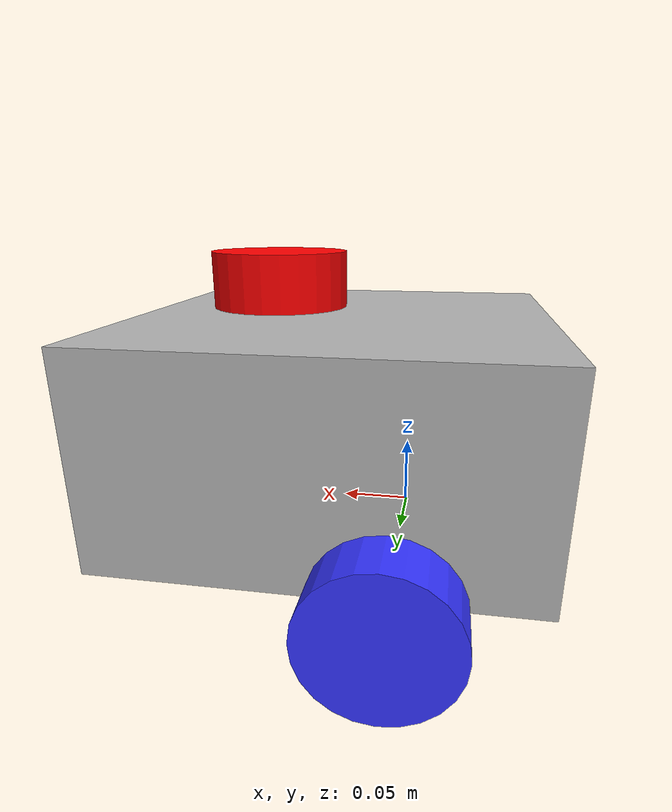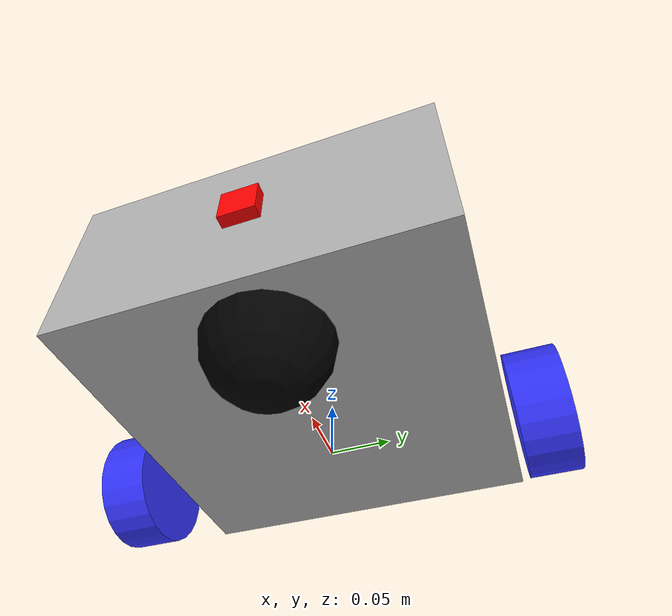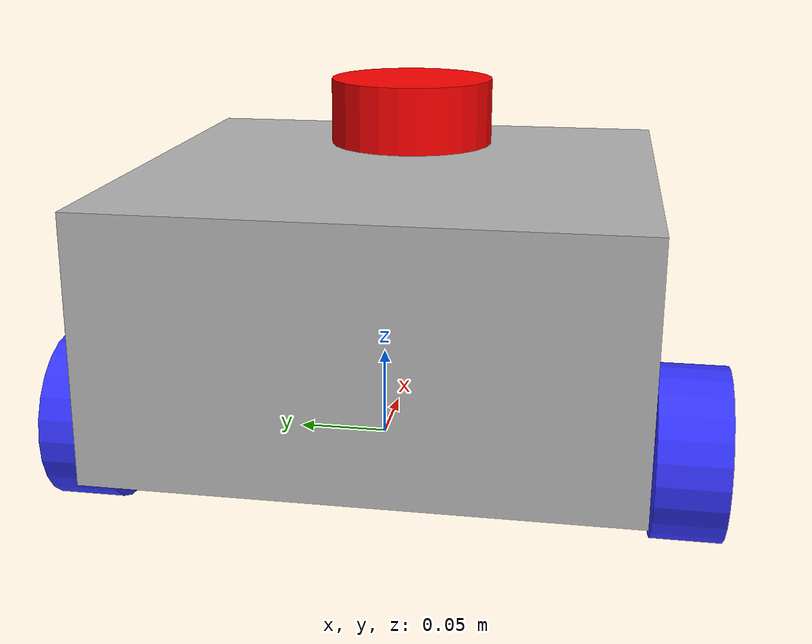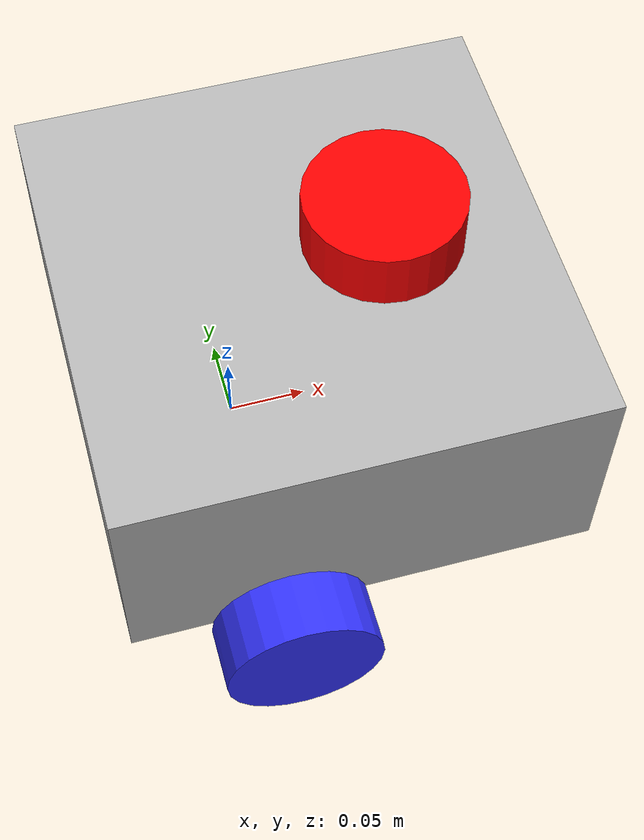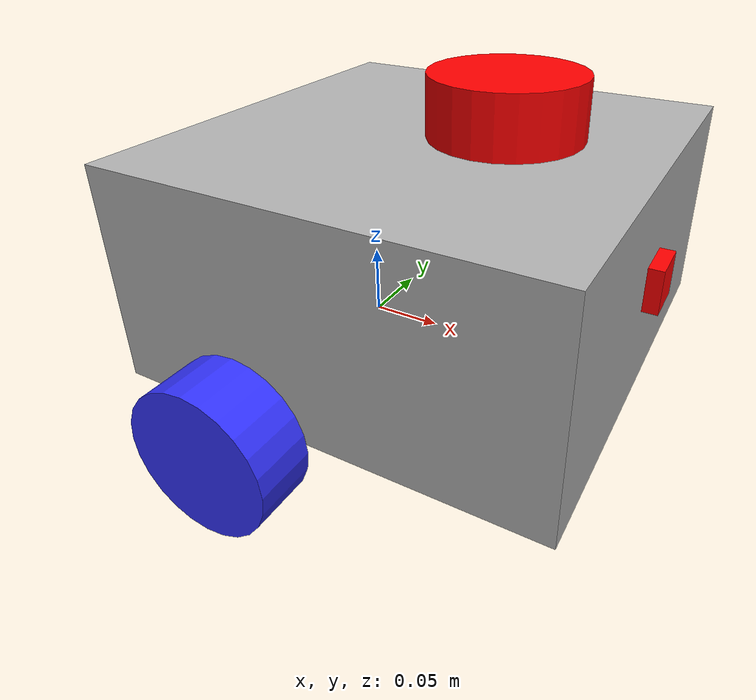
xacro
<?xml version="1.0"?>
<robot xmlns:xacro="http://www.ros.org/wiki/xacro"  name="robot">

   <xacro:arg name="use_sim" default="false"/>

   <xacro:include filename="robot_core.xacro" />

   <xacro:if value="$(arg use_sim)">
      <xacro:include filename="gazebo_control.xacro" />
   </xacro:if>

   <xacro:include filename="lidar.xacro" />
   <xacro:include filename="camera.xacro" />

</robot>

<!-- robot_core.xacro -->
<robot xmlns:xacro="http://www.ros.org/wiki/xacro">

    <xacro:include filename="inertial_macros.xacro" />

    <material name="white">
        <color rgba="1 1 1 1" />
    </material>

    <material name="orange">
        <color rgba="1 0.3 0.1 1" />
    </material>

    <material name="blue">
        <color rgba="0.2 0.2 1 1" />
    </material>

    <material name="black">
        <color rgba="0 0 0 1" />
    </material>

    <material name="red">
        <color rgba="1 0 0 1" />
    </material>

    <material name="gray">
        <color rgba="0.7 0.7 0.7 1" />
    </material>

    <!-- BASE LINK -->

    <link name="base_link">

    </link>

    <!-- CHASSIS LINK -->

    <joint name="chassis_joint" type="fixed">
        <parent link="base_link" />
        <child link="chassis" />
        <origin xyz="-0.1 0 0" />
    </joint>

    <link name="chassis">
        <visual>
            <origin xyz="0.15 0 0.075" />
            <geometry>
                <box size="0.3 0.3 0.15" />
            </geometry>
            <material name="gray" />
        </visual>
        <collision>
            <origin xyz="0.15 0 0.075" />
            <geometry>
                <box size="0.3 0.3 0.15" />
            </geometry>
        </collision>
        <xacro:inertial_box mass="0.5" x="0.3" y="0.3" z="0.15">
            <origin xyz="0.15 0 0.075" rpy="0 0 0" />
        </xacro:inertial_box>
    </link>

    <!-- LEFT WHEEL LINK -->

    <joint name="left_wheel_joint" type="continuous">
        <parent link="base_link" />
        <child link="left_wheel" />
        <origin xyz="0 0.175 0" rpy="-${pi/2} 0 0" />
        <axis xyz="0 0 1" />
    </joint>

    <link name="left_wheel">
        <visual>
            <geometry>
                <cylinder radius="0.05" length="0.04" />
            </geometry>
            <material name="blue" />
        </visual>
        <collision>
            <geometry>
                <cylinder radius="0.05" length="0.04" />
            </geometry>
        </collision>
        <xacro:inertial_cylinder mass="0.1" length="0.04" radius="0.05">
            <origin xyz="0 0 0" rpy="0 0 0" />
        </xacro:inertial_cylinder>
    </link>

    <!-- RIGHT WHEEL LINK -->

    <joint name="right_wheel_joint" type="continuous">
        <parent link="base_link" />
        <child link="right_wheel" />
        <origin xyz="0 -0.175 0" rpy="${pi/2} 0 0" />
        <axis xyz="0 0 -1" />
    </joint>

    <link name="right_wheel">
        <visual>
            <geometry>
                <cylinder radius="0.05" length="0.04" />
            </geometry>
            <material name="blue" />
        </visual>
        <collision>
            <geometry>
                <cylinder radius="0.05" length="0.04" />
            </geometry>
        </collision>
        <xacro:inertial_cylinder mass="0.1" length="0.04" radius="0.05">
            <origin xyz="0 0 0" rpy="0 0 0" />
        </xacro:inertial_cylinder>
    </link>

    <!-- CASTER WHEEL LINK -->

    <joint name="caster_wheel_joint" type="fixed">
        <parent link="chassis" />
        <child link="caster_wheel" />
        <origin xyz="0.24 0 0" />
    </joint>

    <link name="caster_wheel">
        <visual>
            <geometry>
                <sphere radius="0.05" />
            </geometry>
            <material name="black" />
        </visual>
        <collision>
            <geometry>
                <sphere radius="0.05" />
            </geometry>
        </collision>
        <xacro:inertial_sphere mass="0.1" radius="0.05">
            <origin xyz="0 0 0" rpy="0 0 0" />
        </xacro:inertial_sphere>
    </link>

    <gazebo reference="caster_wheel">
        <mu1>0.001</mu1>
        <mu2>0.001</mu2>
    </gazebo>

</robot>

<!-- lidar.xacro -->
<robot xmlns:xacro="http://www.ros.org/wiki/xacro" name="robot">

    <joint name="laser_joint" type="fixed">
        <parent link="base_link" />
        <child link="laser_frame" />
        <origin xyz="0.1 0.0 0.175" rpy="0 0 0" />
    </joint>
    <link name="laser_frame">
        <visual>
            <geometry>
                <cylinder radius="0.05" length="0.04" />
            </geometry>
            <material name="red" />
        </visual>
        <collision>
            <geometry>
                <cylinder radius="0.05" length="0.04" />
            </geometry>
        </collision>
        <xacro:inertial_cylinder
            mass="0.1" radius="0.05" length="0.04">
            <origin xyz="0 0 0" rpy="0 0 0" />
        </xacro:inertial_cylinder>
    </link>

    <xacro:if value="$(arg use_sim)">
        <gazebo reference="laser_frame">
            <sensor name="laser" type="gpu_lidar">
                <pose>0 0 0 0 0 0</pose>
                <update_rate>10</update_rate>
                <always_on>true</always_on>
                <visualize>false</visualize>

                <topic>/scan</topic>
                <gz_frame_id>laser_frame</gz_frame_id>

                <lidar>
                    <scan>
                        <horizontal>
                            <samples>500</samples>
                            <!-- A multiplier on samples, not an angular step. -->
                            <resolution>1</resolution>
                            <min_angle>-3.14</min_angle>
                            <max_angle>3.14</max_angle>
                        </horizontal>
                        <vertical>
                            <samples>1</samples>
                            <resolution>1</resolution>
                            <min_angle>0</min_angle>
                            <max_angle>0</max_angle>
                        </vertical>
                    </scan>
                    <range>
                        <min>0.05</min>
                        <max>12.0</max>
                        <resolution>0.01</resolution>
                    </range>
                </lidar>
            </sensor>
        </gazebo>
    </xacro:if>

</robot>

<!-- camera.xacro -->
<robot xmlns:xacro="http://www.ros.org/wiki/xacro" name="robot">

    <joint name="camera_joint" type="fixed">
        <parent link="chassis" />
        <child link="camera_link" />
        <origin xyz="0.305 0.0 0.08" rpy="0 0 0" />
    </joint>

    <link name="camera_link">
        <visual>
            <geometry>
                <box size="0.010 0.03 0.03" />
            </geometry>
            <material name="red" />
        </visual>
    </link>

    <joint name="camera_optical_joint" type="fixed">
        <parent link="camera_link" />
        <child link="camera_link_optical" />
        <origin xyz="0 0 0" rpy="${-pi/2} 0 ${-pi/2}" />
    </joint>

    <link name="camera_link_optical"></link>

    <xacro:if value="$(arg use_sim)">
        <gazebo reference="camera_link">
            <sensor name="camera" type="camera">
                <pose>0 0 0 0 0 0</pose>
                <update_rate>10</update_rate>
                <always_on>true</always_on>
                <visualize>true</visualize>

                <topic>/camera/image_raw</topic>
                <gz_frame_id>camera_link_optical</gz_frame_id>

                <!-- 640x480 matches the real C920's usb_cam config in
                     mybot_detection, so the detector could be pointed at the
                     simulation without re-tuning. -->
                <camera>
                    <horizontal_fov>1.089</horizontal_fov>
                    <image>
                        <width>640</width>
                        <height>480</height>
                        <format>R8G8B8</format>
                    </image>
                    <clip>
                        <near>0.05</near>
                        <far>8.0</far>
                    </clip>
                </camera>
            </sensor>
        </gazebo>
    </xacro:if>

</robot>
